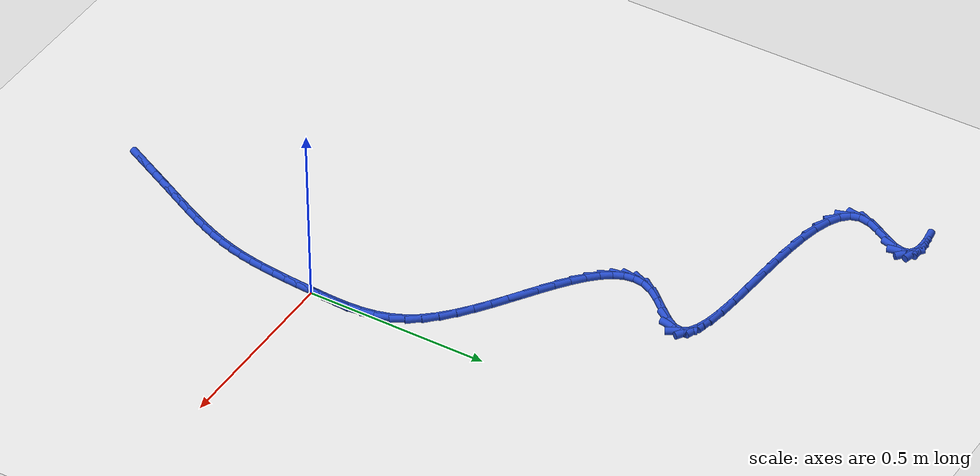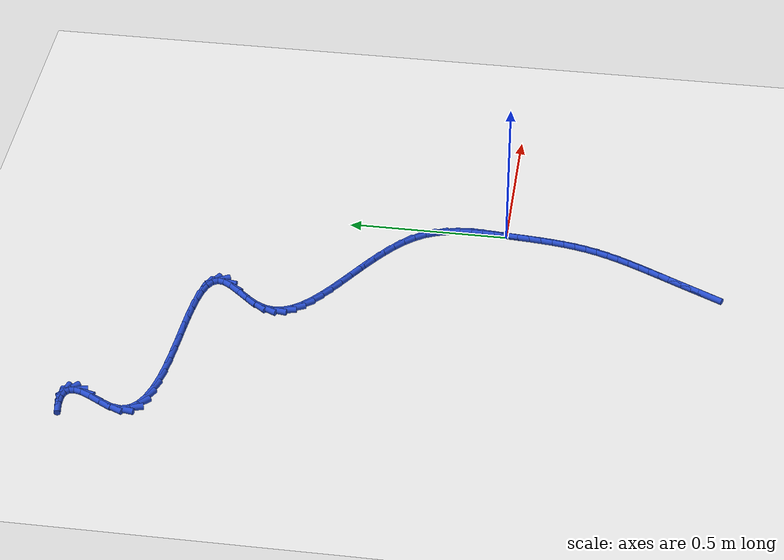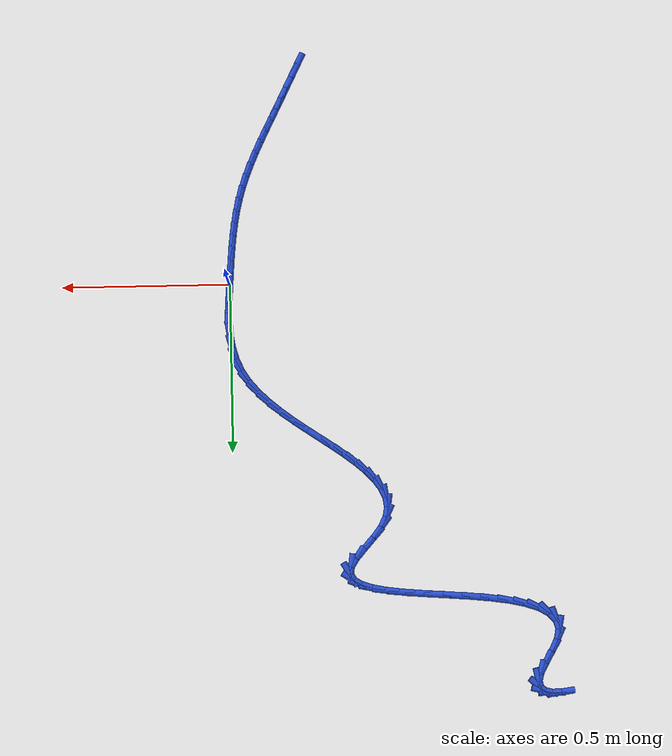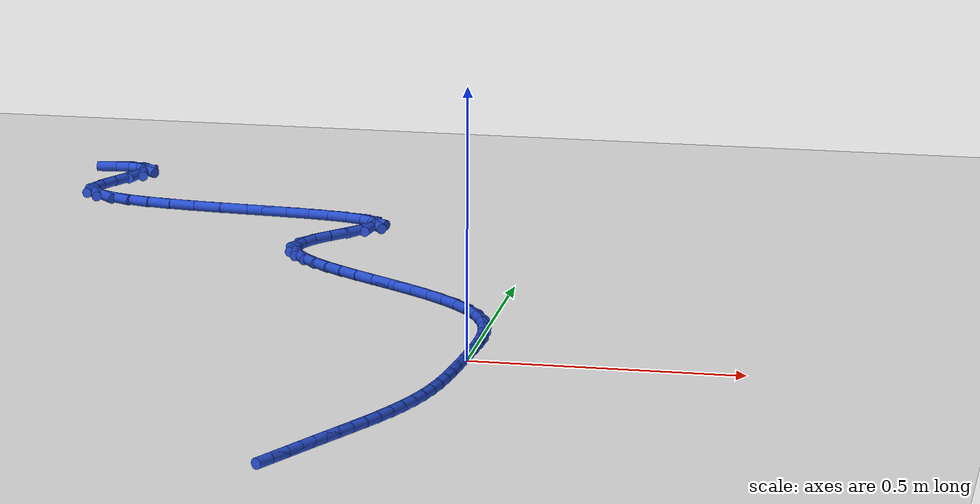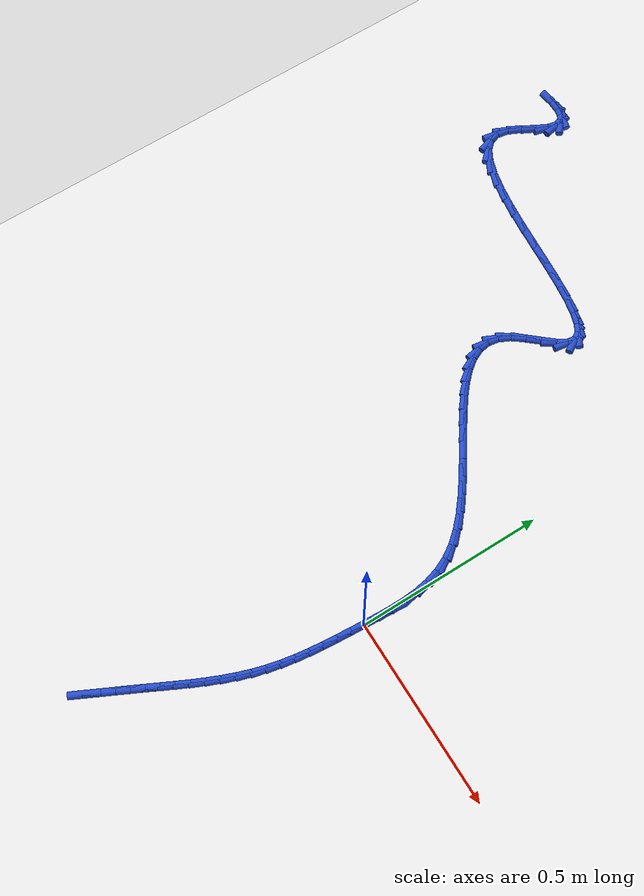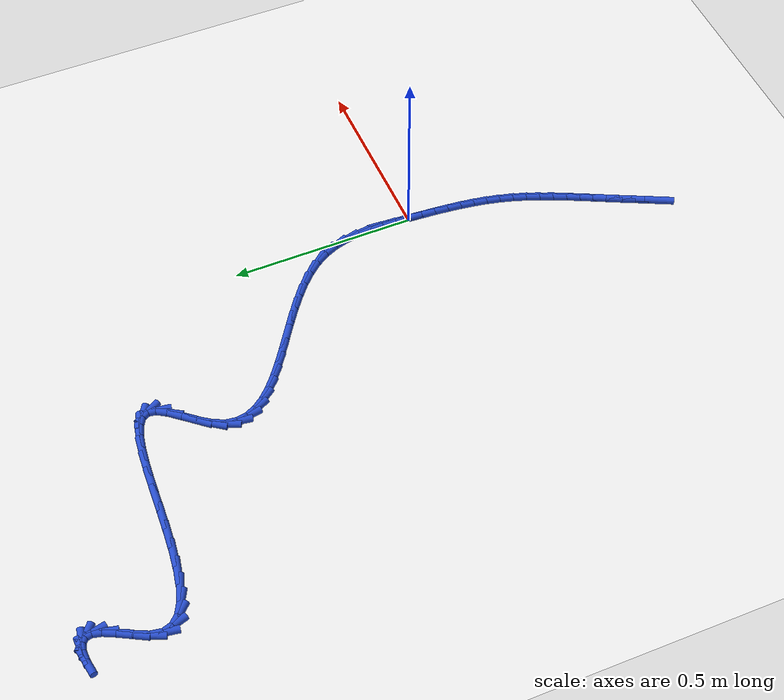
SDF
<sdf version="1.6">
 <world name="default">
  <model name="ground_plane">
   <static>1</static>
   <link name="link">
    <collision name="collision">
     <geometry><plane><normal>0 0 1</normal><size>100 100</size></plane></geometry>
     <surface><friction><ode><mu>100</mu><mu2>50</mu2></ode></friction></surface>
    </collision>
    <visual name="visual">
     <cast_shadows>0</cast_shadows>
     <geometry><plane><normal>0 0 1</normal><size>100 100</size></plane></geometry>
     <material>
      <script><uri>file://media/materials/scripts/gazebo.material</uri><name>Gazebo/WhiteGlow</name></script>
     </material>
    </visual>
   </link>
  </model>
  <model name="line">
   <link name="link_0">
    <pose>8.673617379884035e-19 -5.551115123125783e-17 0.01 0 1.57 1.5075253190274285</pose>
    <collision name="collision">
     <geometry><cylinder><radius>0.01</radius><length>0.08</length></cylinder></geometry>
    </collision>
    <visual name="visual">
     <material>
      <script><name>Gazebo/Blue</name><uri>file://media/materials/scripts/gazebo.material</uri></script>
     </material>
     <geometry><cylinder><radius>0.01</radius><length>0.08</length></cylinder></geometry>
    </visual>
   </link>
   <link name="link_1">
    <pose>0.0024006974243786046 0.03789244310633456 0.01 0 1.57 1.5290202648854714</pose>
    <collision name="collision">
     <geometry><cylinder><radius>0.01</radius><length>0.08</length></cylinder></geometry>
    </collision>
    <visual name="visual">
     <material>
      <script><name>Gazebo/Blue</name><uri>file://media/materials/scripts/gazebo.material</uri></script>
     </material>
     <geometry><cylinder><radius>0.01</radius><length>0.08</length></cylinder></geometry>
    </visual>
   </link>
   <link name="link_2">
    <pose>0.003987087788672461 0.07584401890051412 0.01 0 1.57 -1.5689586023007087</pose>
    <collision name="collision">
     <geometry><cylinder><radius>0.01</radius><length>0.08</length></cylinder></geometry>
    </collision>
    <visual name="visual">
     <material>
      <script><name>Gazebo/Blue</name><uri>file://media/materials/scripts/gazebo.material</uri></script>
     </material>
     <geometry><cylinder><radius>0.01</radius><length>0.08</length></cylinder></geometry>
    </visual>
   </link>
   <link name="link_3">
    <pose>0.003917731223084836 0.11358443523018567 0.01 0 1.57 -1.5020210537201513</pose>
    <collision name="collision">
     <geometry><cylinder><radius>0.01</radius><length>0.08</length></cylinder></geometry>
    </collision>
    <visual name="visual">
     <material>
      <script><name>Gazebo/Blue</name><uri>file://media/materials/scripts/gazebo.material</uri></script>
     </material>
     <geometry><cylinder><radius>0.01</radius><length>0.08</length></cylinder></geometry>
    </visual>
   </link>
   <link name="link_4">
    <pose>0.0013511878578189931 0.150843399942996 0.01 0 1.57 -1.4104318224017498</pose>
    <collision name="collision">
     <geometry><cylinder><radius>0.01</radius><length>0.08</length></cylinder></geometry>
    </collision>
    <visual name="visual">
     <material>
      <script><name>Gazebo/Blue</name><uri>file://media/materials/scripts/gazebo.material</uri></script>
     </material>
     <geometry><cylinder><radius>0.01</radius><length>0.08</length></cylinder></geometry>
    </visual>
   </link>
   <link name="link_5">
    <pose>-0.004553982176921807 0.18735062088659205 0.01 0 1.57 -1.2938881794318415</pose>
    <collision name="collision">
     <geometry><cylinder><radius>0.01</radius><length>0.08</length></cylinder></geometry>
    </collision>
    <visual name="visual">
     <material>
      <script><name>Gazebo/Blue</name><uri>file://media/materials/scripts/gazebo.material</uri></script>
     </material>
     <geometry><cylinder><radius>0.01</radius><length>0.08</length></cylinder></geometry>
    </visual>
   </link>
   <link name="link_6">
    <pose>-0.014639218750934303 0.22283580590862082 0.01 0 1.57 -1.1547741205388387</pose>
    <collision name="collision">
     <geometry><cylinder><radius>0.01</radius><length>0.08</length></cylinder></geometry>
    </collision>
    <visual name="visual">
     <material>
      <script><name>Gazebo/Blue</name><uri>file://media/materials/scripts/gazebo.material</uri></script>
     </material>
     <geometry><cylinder><radius>0.01</radius><length>0.08</length></cylinder></geometry>
    </visual>
   </link>
   <link name="link_7">
    <pose>-0.02974596173401522 0.25702866285672893 0.01 0 1.57 -1.0014317657565566</pose>
    <collision name="collision">
     <geometry><cylinder><radius>0.01</radius><length>0.08</length></cylinder></geometry>
    </collision>
    <visual name="visual">
     <material>
      <script><name>Gazebo/Blue</name><uri>file://media/materials/scripts/gazebo.material</uri></script>
     </material>
     <geometry><cylinder><radius>0.01</radius><length>0.08</length></cylinder></geometry>
    </visual>
   </link>
   <link name="link_8">
    <pose>-0.05064300377911523 0.2896765970687816 0.01 0 1.57 -0.8663912121392355</pose>
    <collision name="collision">
     <geometry><cylinder><radius>0.01</radius><length>0.08</length></cylinder></geometry>
    </collision>
    <visual name="visual">
     <material>
      <script><name>Gazebo/Blue</name><uri>file://media/materials/scripts/gazebo.material</uri></script>
     </material>
     <geometry><cylinder><radius>0.01</radius><length>0.08</length></cylinder></geometry>
    </visual>
   </link>
   <link name="link_9">
    <pose>-0.07707347467329738 0.32077687422587503 0.01 0 1.57 -0.7654138585581325</pose>
    <collision name="collision">
     <geometry><cylinder><radius>0.01</radius><length>0.08</length></cylinder></geometry>
    </collision>
    <visual name="visual">
     <material>
      <script><name>Gazebo/Blue</name><uri>file://media/materials/scripts/gazebo.material</uri></script>
     </material>
     <geometry><cylinder><radius>0.01</radius><length>0.08</length></cylinder></geometry>
    </visual>
   </link>
   <link name="link_10">
    <pose>-0.10802119532142378 0.3505117342186976 0.01 0 1.57 -0.6923956295825017</pose>
    <collision name="collision">
     <geometry><cylinder><radius>0.01</radius><length>0.08</length></cylinder></geometry>
    </collision>
    <visual name="visual">
     <material>
      <script><name>Gazebo/Blue</name><uri>file://media/materials/scripts/gazebo.material</uri></script>
     </material>
     <geometry><cylinder><radius>0.01</radius><length>0.08</length></cylinder></geometry>
    </visual>
   </link>
   <link name="link_11">
    <pose>-0.14245212459521098 0.37906776828366845 0.01 0 1.57 -0.64182833404888</pose>
    <collision name="collision">
     <geometry><cylinder><radius>0.01</radius><length>0.08</length></cylinder></geometry>
    </collision>
    <visual name="visual">
     <material>
      <script><name>Gazebo/Blue</name><uri>file://media/materials/scripts/gazebo.material</uri></script>
     </material>
     <geometry><cylinder><radius>0.01</radius><length>0.08</length></cylinder></geometry>
    </visual>
   </link>
   <link name="link_12">
    <pose>-0.17933222136637558 0.40663156765720654 0.01 0 1.57 -0.6098754694298004</pose>
    <collision name="collision">
     <geometry><cylinder><radius>0.01</radius><length>0.08</length></cylinder></geometry>
    </collision>
    <visual name="visual">
     <material>
      <script><name>Gazebo/Blue</name><uri>file://media/materials/scripts/gazebo.material</uri></script>
     </material>
     <geometry><cylinder><radius>0.01</radius><length>0.08</length></cylinder></geometry>
    </visual>
   </link>
   <link name="link_13">
    <pose>-0.21762744450663402 0.4333897235757309 0.01 0 1.57 -0.5943284206412195</pose>
    <collision name="collision">
     <geometry><cylinder><radius>0.01</radius><length>0.08</length></cylinder></geometry>
    </collision>
    <visual name="visual">
     <material>
      <script><name>Gazebo/Blue</name><uri>file://media/materials/scripts/gazebo.material</uri></script>
     </material>
     <geometry><cylinder><radius>0.01</radius><length>0.08</length></cylinder></geometry>
    </visual>
   </link>
   <link name="link_14">
    <pose>-0.2563037528877031 0.45952882727566086 0.01 0 1.57 -0.594487897480302</pose>
    <collision name="collision">
     <geometry><cylinder><radius>0.01</radius><length>0.08</length></cylinder></geometry>
    </collision>
    <visual name="visual">
     <material>
      <script><name>Gazebo/Blue</name><uri>file://media/materials/scripts/gazebo.material</uri></script>
     </material>
     <geometry><cylinder><radius>0.01</radius><length>0.08</length></cylinder></geometry>
    </visual>
   </link>
   <link name="link_15">
    <pose>-0.29432710538129914 0.485235469993415 0.01 0 1.57 -0.6111935539686418</pose>
    <collision name="collision">
     <geometry><cylinder><radius>0.01</radius><length>0.08</length></cylinder></geometry>
    </collision>
    <visual name="visual">
     <material>
      <script><name>Gazebo/Blue</name><uri>file://media/materials/scripts/gazebo.material</uri></script>
     </material>
     <geometry><cylinder><radius>0.01</radius><length>0.08</length></cylinder></geometry>
    </visual>
   </link>
   <link name="link_16">
    <pose>-0.33066346085913895 0.5106962429654127 0.01 0 1.57 -0.6471088264313417</pose>
    <collision name="collision">
     <geometry><cylinder><radius>0.01</radius><length>0.08</length></cylinder></geometry>
    </collision>
    <visual name="visual">
     <material>
      <script><name>Gazebo/Blue</name><uri>file://media/materials/scripts/gazebo.material</uri></script>
     </material>
     <geometry><cylinder><radius>0.01</radius><length>0.08</length></cylinder></geometry>
    </visual>
   </link>
   <link name="link_17">
    <pose>-0.3642787781929391 0.5360977374280731 0.01 0 1.57 -0.7073568498102262</pose>
    <collision name="collision">
     <geometry><cylinder><radius>0.01</radius><length>0.08</length></cylinder></geometry>
    </collision>
    <visual name="visual">
     <material>
      <script><name>Gazebo/Blue</name><uri>file://media/materials/scripts/gazebo.material</uri></script>
     </material>
     <geometry><cylinder><radius>0.01</radius><length>0.08</length></cylinder></geometry>
    </visual>
   </link>
   <link name="link_18">
    <pose>-0.394139016254416 0.5616265446178148 0.01 0 1.57 -0.8005518936840011</pose>
    <collision name="collision">
     <geometry><cylinder><radius>0.01</radius><length>0.08</length></cylinder></geometry>
    </collision>
    <visual name="visual">
     <material>
      <script><name>Gazebo/Blue</name><uri>file://media/materials/scripts/gazebo.material</uri></script>
     </material>
     <geometry><cylinder><radius>0.01</radius><length>0.08</length></cylinder></geometry>
    </visual>
   </link>
   <link name="link_19">
    <pose>-0.4192101339152863 0.5874692557710572 0.01 0 1.57 -0.9397874312750841</pose>
    <collision name="collision">
     <geometry><cylinder><radius>0.01</radius><length>0.08</length></cylinder></geometry>
    </collision>
    <visual name="visual">
     <material>
      <script><name>Gazebo/Blue</name><uri>file://media/materials/scripts/gazebo.material</uri></script>
     </material>
     <geometry><cylinder><radius>0.01</radius><length>0.08</length></cylinder></geometry>
    </visual>
   </link>
   <link name="link_20">
    <pose>-0.43845809004726666 0.6138124621242195 0.01 0 1.57 -1.1409768995910816</pose>
    <collision name="collision">
     <geometry><cylinder><radius>0.01</radius><length>0.08</length></cylinder></geometry>
    </collision>
    <visual name="visual">
     <material>
      <script><name>Gazebo/Blue</name><uri>file://media/materials/scripts/gazebo.material</uri></script>
     </material>
     <geometry><cylinder><radius>0.01</radius><length>0.08</length></cylinder></geometry>
    </visual>
   </link>
   <link name="link_21">
    <pose>-0.4508488435220736 0.6408427549137203 0.01 0 1.57 -1.4109226978637774</pose>
    <collision name="collision">
     <geometry><cylinder><radius>0.01</radius><length>0.08</length></cylinder></geometry>
    </collision>
    <visual name="visual">
     <material>
      <script><name>Gazebo/Blue</name><uri>file://media/materials/scripts/gazebo.material</uri></script>
     </material>
     <geometry><cylinder><radius>0.01</radius><length>0.08</length></cylinder></geometry>
    </visual>
   </link>
   <link name="link_22">
    <pose>-0.45534835321142353 0.6687467253759789 0.01 0 1.57 1.4191677931692994</pose>
    <collision name="collision">
     <geometry><cylinder><radius>0.01</radius><length>0.08</length></cylinder></geometry>
    </collision>
    <visual name="visual">
     <material>
      <script><name>Gazebo/Blue</name><uri>file://media/materials/scripts/gazebo.material</uri></script>
     </material>
     <geometry><cylinder><radius>0.01</radius><length>0.08</length></cylinder></geometry>
    </visual>
   </link>
   <link name="link_23">
    <pose>-0.4509225779870332 0.6977109647474142 0.01 0 1.57 1.1265887744590974</pose>
    <collision name="collision">
     <geometry><cylinder><radius>0.01</radius><length>0.08</length></cylinder></geometry>
    </collision>
    <visual name="visual">
     <material>
      <script><name>Gazebo/Blue</name><uri>file://media/materials/scripts/gazebo.material</uri></script>
     </material>
     <geometry><cylinder><radius>0.01</radius><length>0.08</length></cylinder></geometry>
    </visual>
   </link>
   <link name="link_24">
    <pose>-0.4365450232952983 0.7279203001907419 0.01 0 1.57 0.9265132472743725</pose>
    <collision name="collision">
     <geometry><cylinder><radius>0.01</radius><length>0.08</length></cylinder></geometry>
    </collision>
    <visual name="visual">
     <material>
      <script><name>Gazebo/Blue</name><uri>file://media/materials/scripts/gazebo.material</uri></script>
     </material>
     <geometry><cylinder><radius>0.01</radius><length>0.08</length></cylinder></geometry>
    </visual>
   </link>
   <link name="link_25">
    <pose>-0.4131150955645314 0.7591093637241842 0.01 0 1.57 0.8499098955715528</pose>
    <collision name="collision">
     <geometry><cylinder><radius>0.01</radius><length>0.08</length></cylinder></geometry>
    </collision>
    <visual name="visual">
     <material>
      <script><name>Gazebo/Blue</name><uri>file://media/materials/scripts/gazebo.material</uri></script>
     </material>
     <geometry><cylinder><radius>0.01</radius><length>0.08</length></cylinder></geometry>
    </visual>
   </link>
   <link name="link_26">
    <pose>-0.38600149579867293 0.789968053116307 0.01 0 1.57 0.8645799931508453</pose>
    <collision name="collision">
     <geometry><cylinder><radius>0.01</radius><length>0.08</length></cylinder></geometry>
    </collision>
    <visual name="visual">
     <material>
      <script><name>Gazebo/Blue</name><uri>file://media/materials/scripts/gazebo.material</uri></script>
     </material>
     <geometry><cylinder><radius>0.01</radius><length>0.08</length></cylinder></geometry>
    </visual>
   </link>
   <link name="link_27">
    <pose>-0.36120529643232446 0.8190384441291078 0.01 0 1.57 1.0028507828849151</pose>
    <collision name="collision">
     <geometry><cylinder><radius>0.01</radius><length>0.08</length></cylinder></geometry>
    </collision>
    <visual name="visual">
     <material>
      <script><name>Gazebo/Blue</name><uri>file://media/materials/scripts/gazebo.material</uri></script>
     </material>
     <geometry><cylinder><radius>0.01</radius><length>0.08</length></cylinder></geometry>
    </visual>
   </link>
   <link name="link_28">
    <pose>-0.34472756990008724 0.8448626125245833 0.01 0 1.57 1.4241262407742952</pose>
    <collision name="collision">
     <geometry><cylinder><radius>0.01</radius><length>0.08</length></cylinder></geometry>
    </collision>
    <visual name="visual">
     <material>
      <script><name>Gazebo/Blue</name><uri>file://media/materials/scripts/gazebo.material</uri></script>
     </material>
     <geometry><cylinder><radius>0.01</radius><length>0.08</length></cylinder></geometry>
    </visual>
   </link>
   <link name="link_29">
    <pose>-0.34156777465274174 0.8662514642827709 0.01 0 1.57 -1.0385326744617382</pose>
    <collision name="collision">
     <geometry><cylinder><radius>0.01</radius><length>0.08</length></cylinder></geometry>
    </collision>
    <visual name="visual">
     <material>
      <script><name>Gazebo/Blue</name><uri>file://media/materials/scripts/gazebo.material</uri></script>
     </material>
     <geometry><cylinder><radius>0.01</radius><length>0.08</length></cylinder></geometry>
    </visual>
   </link>
   <link name="link_30">
    <pose>-0.3516540762188279 0.8833770253401521 0.01 0 1.57 -0.5561707207859877</pose>
    <collision name="collision">
     <geometry><cylinder><radius>0.01</radius><length>0.08</length></cylinder></geometry>
    </collision>
    <visual name="visual">
     <material>
      <script><name>Gazebo/Blue</name><uri>file://media/materials/scripts/gazebo.material</uri></script>
     </material>
     <geometry><cylinder><radius>0.01</radius><length>0.08</length></cylinder></geometry>
    </visual>
   </link>
   <link name="link_31">
    <pose>-0.3733134287240263 0.8968410820174597 0.01 0 1.57 -0.31846515100283507</pose>
    <collision name="collision">
     <geometry><cylinder><radius>0.01</radius><length>0.08</length></cylinder></geometry>
    </collision>
    <visual name="visual">
     <material>
      <script><name>Gazebo/Blue</name><uri>file://media/materials/scripts/gazebo.material</uri></script>
     </material>
     <geometry><cylinder><radius>0.01</radius><length>0.08</length></cylinder></geometry>
    </visual>
   </link>
   <link name="link_32">
    <pose>-0.4048721725801135 0.9072455853544157 0.01 0 1.57 -0.197154004233897</pose>
    <collision name="collision">
     <geometry><cylinder><radius>0.01</radius><length>0.08</length></cylinder></geometry>
    </collision>
    <visual name="visual">
     <material>
      <script><name>Gazebo/Blue</name><uri>file://media/materials/scripts/gazebo.material</uri></script>
     </material>
     <geometry><cylinder><radius>0.01</radius><length>0.08</length></cylinder></geometry>
    </visual>
   </link>
   <link name="link_33">
    <pose>-0.444656648198866 0.9151924863907421 0.01 0 1.57 -0.13070722965840106</pose>
    <collision name="collision">
     <geometry><cylinder><radius>0.01</radius><length>0.08</length></cylinder></geometry>
    </collision>
    <visual name="visual">
     <material>
      <script><name>Gazebo/Blue</name><uri>file://media/materials/scripts/gazebo.material</uri></script>
     </material>
     <geometry><cylinder><radius>0.01</radius><length>0.08</length></cylinder></geometry>
    </visual>
   </link>
   <link name="link_34">
    <pose>-0.49099319599206065 0.9212837361661609 0.01 0 1.57 -0.09417637619817003</pose>
    <collision name="collision">
     <geometry><cylinder><radius>0.01</radius><length>0.08</length></cylinder></geometry>
    </collision>
    <visual name="visual">
     <material>
      <script><name>Gazebo/Blue</name><uri>file://media/materials/scripts/gazebo.material</uri></script>
     </material>
     <geometry><cylinder><radius>0.01</radius><length>0.08</length></cylinder></geometry>
    </visual>
   </link>
   <link name="link_35">
    <pose>-0.5422081563714738 0.9261212857203935 0.01 0 1.57 -0.07676583691806407</pose>
    <collision name="collision">
     <geometry><cylinder><radius>0.01</radius><length>0.08</length></cylinder></geometry>
    </collision>
    <visual name="visual">
     <material>
      <script><name>Gazebo/Blue</name><uri>file://media/materials/scripts/gazebo.material</uri></script>
     </material>
     <geometry><cylinder><radius>0.01</radius><length>0.08</length></cylinder></geometry>
    </visual>
   </link>
   <link name="link_36">
    <pose>-0.5966278697488823 0.9303070860931625 0.01 0 1.57 -0.07378791071253317</pose>
    <collision name="collision">
     <geometry><cylinder><radius>0.01</radius><length>0.08</length></cylinder></geometry>
    </collision>
    <visual name="visual">
     <material>
      <script><name>Gazebo/Blue</name><uri>file://media/materials/scripts/gazebo.material</uri></script>
     </material>
     <geometry><cylinder><radius>0.01</radius><length>0.08</length></cylinder></geometry>
    </visual>
   </link>
   <link name="link_37">
    <pose>-0.6525786765360627 0.9344430883241895 0.01 0 1.57 -0.08380794231501582</pose>
    <collision name="collision">
     <geometry><cylinder><radius>0.01</radius><length>0.08</length></cylinder></geometry>
    </collision>
    <visual name="visual">
     <material>
      <script><name>Gazebo/Blue</name><uri>file://media/materials/scripts/gazebo.material</uri></script>
     </material>
     <geometry><cylinder><radius>0.01</radius><length>0.08</length></cylinder></geometry>
    </visual>
   </link>
   <link name="link_38">
    <pose>-0.7083869171447914 0.9391312434531967 0.01 0 1.57 -0.10778661451439918</pose>
    <collision name="collision">
     <geometry><cylinder><radius>0.01</radius><length>0.08</length></cylinder></geometry>
    </collision>
    <visual name="visual">
     <material>
      <script><name>Gazebo/Blue</name><uri>file://media/materials/scripts/gazebo.material</uri></script>
     </material>
     <geometry><cylinder><radius>0.01</radius><length>0.08</length></cylinder></geometry>
    </visual>
   </link>
   <link name="link_39">
    <pose>-0.7623789319868453 0.9449735025199053 0.01 0 1.57 -0.14933521840631078</pose>
    <collision name="collision">
     <geometry><cylinder><radius>0.01</radius><length>0.08</length></cylinder></geometry>
    </collision>
    <visual name="visual">
     <material>
      <script><name>Gazebo/Blue</name><uri>file://media/materials/scripts/gazebo.material</uri></script>
     </material>
     <geometry><cylinder><radius>0.01</radius><length>0.08</length></cylinder></geometry>
    </visual>
   </link>
   <link name="link_40">
    <pose>-0.8128810614740011 0.9525718165640382 0.01 0 1.57 -0.21616804262895564</pose>
    <collision name="collision">
     <geometry><cylinder><radius>0.01</radius><length>0.08</length></cylinder></geometry>
    </collision>
    <visual name="visual">
     <material>
      <script><name>Gazebo/Blue</name><uri>file://media/materials/scripts/gazebo.material</uri></script>
     </material>
     <geometry><cylinder><radius>0.01</radius><length>0.08</length></cylinder></geometry>
    </visual>
   </link>
   <link name="link_41">
    <pose>-0.8582196460180352 0.9625281366253167 0.01 0 1.57 -0.32367743674897254</pose>
    <collision name="collision">
     <geometry><cylinder><radius>0.01</radius><length>0.08</length></cylinder></geometry>
    </collision>
    <visual name="visual">
     <material>
      <script><name>Gazebo/Blue</name><uri>file://media/materials/scripts/gazebo.material</uri></script>
     </material>
     <geometry><cylinder><radius>0.01</radius><length>0.08</length></cylinder></geometry>
    </visual>
   </link>
   <link name="link_42">
    <pose>-0.8967210260307243 0.9754444137434628 0.01 0 1.57 -0.502418190944188</pose>
    <collision name="collision">
     <geometry><cylinder><radius>0.01</radius><length>0.08</length></cylinder></geometry>
    </collision>
    <visual name="visual">
     <material>
      <script><name>Gazebo/Blue</name><uri>file://media/materials/scripts/gazebo.material</uri></script>
     </material>
     <geometry><cylinder><radius>0.01</radius><length>0.08</length></cylinder></geometry>
    </visual>
   </link>
   <link name="link_43">
    <pose>-0.9267115419238452 0.9919225989581986 0.01 0 1.57 -0.806065004185008</pose>
    <collision name="collision">
     <geometry><cylinder><radius>0.01</radius><length>0.08</length></cylinder></geometry>
    </collision>
    <visual name="visual">
     <material>
      <script><name>Gazebo/Blue</name><uri>file://media/materials/scripts/gazebo.material</uri></script>
     </material>
     <geometry><cylinder><radius>0.01</radius><length>0.08</length></cylinder></geometry>
    </visual>
   </link>
   <link name="link_44">
    <pose>-0.9465175341091742 1.012564643309246 0.01 0 1.57 -1.2676298551796483</pose>
    <collision name="collision">
     <geometry><cylinder><radius>0.01</radius><length>0.08</length></cylinder></geometry>
    </collision>
    <visual name="visual">
     <material>
      <script><name>Gazebo/Blue</name><uri>file://media/materials/scripts/gazebo.material</uri></script>
     </material>
     <geometry><cylinder><radius>0.01</radius><length>0.08</length></cylinder></geometry>
    </visual>
   </link>
   <link name="link_45">
    <pose>-0.954465342998488 1.0379724978363267 0.01 0 1.57 1.39590290702077</pose>
    <collision name="collision">
     <geometry><cylinder><radius>0.01</radius><length>0.08</length></cylinder></geometry>
    </collision>
    <visual name="visual">
     <material>
      <script><name>Gazebo/Blue</name><uri>file://media/materials/scripts/gazebo.material</uri></script>
     </material>
     <geometry><cylinder><radius>0.01</radius><length>0.08</length></cylinder></geometry>
    </visual>
   </link>
   <link name="link_46">
    <pose>-0.9490411559229682 1.068669876234632 0.01 0 1.57 1.1337649181963538</pose>
    <collision name="collision">
     <geometry><cylinder><radius>0.01</radius><length>0.08</length></cylinder></geometry>
    </collision>
    <visual name="visual">
     <material>
      <script><name>Gazebo/Blue</name><uri>file://media/materials/scripts/gazebo.material</uri></script>
     </material>
     <geometry><cylinder><radius>0.01</radius><length>0.08</length></cylinder></geometry>
    </visual>
   </link>
   <link name="link_47">
    <pose>-0.9329493993433 1.1031158679368374 0.01 0 1.57 1.0552168070613144</pose>
    <collision name="collision">
     <geometry><cylinder><radius>0.01</radius><length>0.08</length></cylinder></geometry>
    </collision>
    <visual name="visual">
     <material>
      <script><name>Gazebo/Blue</name><uri>file://media/materials/scripts/gazebo.material</uri></script>
     </material>
     <geometry><cylinder><radius>0.01</radius><length>0.08</length></cylinder></geometry>
    </visual>
   </link>
   <link name="link_48">
    <pose>-0.9134376560663752 1.137545906832915 0.01 0 1.57 1.102155173140251</pose>
    <collision name="collision">
     <geometry><cylinder><radius>0.01</radius><length>0.08</length></cylinder></geometry>
    </collision>
    <visual name="visual">
     <material>
      <script><name>Gazebo/Blue</name><uri>file://media/materials/scripts/gazebo.material</uri></script>
     </material>
     <geometry><cylinder><radius>0.01</radius><length>0.08</length></cylinder></geometry>
    </visual>
   </link>
   <link name="link_49">
    <pose>-0.8979762566902787 1.168086483750758 0.01 0 1.57 1.3291386056906196</pose>
    <collision name="collision">
     <geometry><cylinder><radius>0.01</radius><length>0.08</length></cylinder></geometry>
    </collision>
    <visual name="visual">
     <material>
      <script><name>Gazebo/Blue</name><uri>file://media/materials/scripts/gazebo.material</uri></script>
     </material>
     <geometry><cylinder><radius>0.01</radius><length>0.08</length></cylinder></geometry>
    </visual>
   </link>
   <link name="link_50">
    <pose>-0.8921126494063587 1.1918764066381438 0.01 0 1.57 -1.3493950889043413</pose>
    <collision name="collision">
     <geometry><cylinder><radius>0.01</radius><length>0.08</length></cylinder></geometry>
    </collision>
    <visual name="visual">
     <material>
      <script><name>Gazebo/Blue</name><uri>file://media/materials/scripts/gazebo.material</uri></script>
     </material>
     <geometry><cylinder><radius>0.01</radius><length>0.08</length></cylinder></geometry>
    </visual>
   </link>
   <link name="link_51">
    <pose>-0.8959492516949755 1.2089210642528503 0.01 0 1.57 -0.7058133783352732</pose>
    <collision name="collision">
     <geometry><cylinder><radius>0.01</radius><length>0.08</length></cylinder></geometry>
    </collision>
    <visual name="visual">
     <material>
      <script><name>Gazebo/Blue</name><uri>file://media/materials/scripts/gazebo.material</uri></script>
     </material>
     <geometry><cylinder><radius>0.01</radius><length>0.08</length></cylinder></geometry>
    </visual>
   </link>
   <link name="link_52">
    <pose>-0.9086313748793773 1.2197297216921528 0.01 0 1.57 -0.2410450929915201</pose>
    <collision name="collision">
     <geometry><cylinder><radius>0.01</radius><length>0.08</length></cylinder></geometry>
    </collision>
    <visual name="visual">
     <material>
      <script><name>Gazebo/Blue</name><uri>file://media/materials/scripts/gazebo.material</uri></script>
     </material>
     <geometry><cylinder><radius>0.01</radius><length>0.08</length></cylinder></geometry>
    </visual>
   </link>
   <link name="link_53">
    <pose>-0.9293043302828121 1.2248116440533283 0.01 0 1.57 0.004874179724751504</pose>
    <collision name="collision">
     <geometry><cylinder><radius>0.01</radius><length>0.08</length></cylinder></geometry>
    </collision>
    <visual name="visual">
     <material>
      <script><name>Gazebo/Blue</name><uri>file://media/materials/scripts/gazebo.material</uri></script>
     </material>
     <geometry><cylinder><radius>0.01</radius><length>0.08</length></cylinder></geometry>
    </visual>
   </link>
   <link name="link_54">
    <pose>-0.9571134292285278 1.2246760964336518 0.01 0 1.57 0.14114016267156324</pose>
    <collision name="collision">
     <geometry><cylinder><radius>0.01</radius><length>0.08</length></cylinder></geometry>
    </collision>
    <visual name="visual">
     <material>
      <script><name>Gazebo/Blue</name><uri>file://media/materials/scripts/gazebo.material</uri></script>
     </material>
     <geometry><cylinder><radius>0.01</radius><length>0.08</length></cylinder></geometry>
    </visual>
   </link>
   <link name="link_211">
    <pose>-0.21206892920266732 -0.653513529334716 0.01 0 1.57 1.109735680937742</pose>
    <collision name="collision">
     <geometry><cylinder><radius>0.01</radius><length>0.08</length></cylinder></geometry>
    </collision>
    <visual name="visual">
     <material>
      <script><name>Gazebo/Blue</name><uri>file://media/materials/scripts/gazebo.material</uri></script>
     </material>
     <geometry><cylinder><radius>0.01</radius><length>0.08</length></cylinder></geometry>
    </visual>
   </link>
   <link name="link_212">
    <pose>-0.19642067385905324 -0.6220135582050963 0.01 0 1.57 1.1114858115647885</pose>
    <collision name="collision">
     <geometry><cylinder><radius>0.01</radius><length>0.08</length></cylinder></geometry>
    </collision>
    <visual name="visual">
     <material>
      <script><name>Gazebo/Blue</name><uri>file://media/materials/scripts/gazebo.material</uri></script>
     </material>
     <geometry><cylinder><radius>0.01</radius><length>0.08</length></cylinder></geometry>
    </visual>
   </link>
   <link name="link_213">
    <pose>-0.1808459887329744 -0.5905234861562072 0.01 0 1.57 1.1110954010387741</pose>
    <collision name="collision">
     <geometry><cylinder><radius>0.01</radius><length>0.08</length></cylinder></geometry>
    </collision>
    <visual name="visual">
     <material>
      <script><name>Gazebo/Blue</name><uri>file://media/materials/scripts/gazebo.material</uri></script>
     </material>
     <geometry><cylinder><radius>0.01</radius><length>0.08</length></cylinder></geometry>
    </visual>
   </link>
   <link name="link_214">
    <pose>-0.16518646249191643 -0.5588929575121985 0.01 0 1.57 1.1086006306147538</pose>
    <collision name="collision">
     <geometry><cylinder><radius>0.01</radius><length>0.08</length></cylinder></geometry>
    </collision>
    <visual name="visual">
     <material>
      <script><name>Gazebo/Blue</name><uri>file://media/materials/scripts/gazebo.material</uri></script>
     </material>
     <geometry><cylinder><radius>0.01</radius><length>0.08</length></cylinder></geometry>
    </visual>
   </link>
   <link name="link_215">
    <pose>-0.14928368380336485 -0.5269716165972196 0.01 0 1.57 1.104888077590612</pose>
    <collision name="collision">
     <geometry><cylinder><radius>0.01</radius><length>0.08</length></cylinder></geometry>
    </collision>
    <visual name="visual">
     <material>
      <script><name>Gazebo/Blue</name><uri>file://media/materials/scripts/gazebo.material</uri></script>
     </material>
     <geometry><cylinder><radius>0.01</radius><length>0.08</length></cylinder></geometry>
    </visual>
   </link>
   <link name="link_216">
    <pose>-0.13301729319026107 -0.4946218704129902 0.01 0 1.57 1.1063010237828157</pose>
    <collision name="collision">
     <geometry><cylinder><radius>0.01</radius><length>0.08</length></cylinder></geometry>
    </collision>
    <visual name="visual">
     <material>
      <script><name>Gazebo/Blue</name><uri>file://media/materials/scripts/gazebo.material</uri></script>
     </material>
     <geometry><cylinder><radius>0.01</radius><length>0.08</length></cylinder></geometry>
    </visual>
   </link>
   <link name="link_217">
    <pose>-0.11657656391413458 -0.46180997747543207 0.01 0 1.57 1.1156893896331141</pose>
    <collision name="collision">
     <geometry><cylinder><radius>0.01</radius><length>0.08</length></cylinder></geometry>
    </collision>
    <visual name="visual">
     <material>
      <script><name>Gazebo/Blue</name><uri>file://media/materials/scripts/gazebo.material</uri></script>
     </material>
     <geometry><cylinder><radius>0.01</radius><length>0.08</length></cylinder></geometry>
    </visual>
   </link>
   <link name="link_218">
    <pose>-0.10030149843012993 -0.4285527512096894 0.01 0 1.57 1.1329866803774442</pose>
    <collision name="collision">
     <geometry><cylinder><radius>0.01</radius><length>0.08</length></cylinder></geometry>
    </collision>
    <visual name="visual">
     <material>
      <script><name>Gazebo/Blue</name><uri>file://media/materials/scripts/gazebo.material</uri></script>
     </material>
     <geometry><cylinder><radius>0.01</radius><length>0.08</length></cylinder></geometry>
    </visual>
   </link>
   <link name="link_219">
    <pose>-0.08453310735889089 -0.39486734318187294 0.01 0 1.57 1.1582993773809511</pose>
    <collision name="collision">
     <geometry><cylinder><radius>0.01</radius><length>0.08</length></cylinder></geometry>
    </collision>
    <visual name="visual">
     <material>
      <script><name>Gazebo/Blue</name><uri>file://media/materials/scripts/gazebo.material</uri></script>
     </material>
     <geometry><cylinder><radius>0.01</radius><length>0.08</length></cylinder></geometry>
    </visual>
   </link>
   <link name="link_220">
    <pose>-0.06961240132106239 -0.3607709049580959 0.01 0 1.57 1.1918935339226677</pose>
    <collision name="collision">
     <geometry><cylinder><radius>0.01</radius><length>0.08</length></cylinder></geometry>
    </collision>
    <visual name="visual">
     <material>
      <script><name>Gazebo/Blue</name><uri>file://media/materials/scripts/gazebo.material</uri></script>
     </material>
     <geometry><cylinder><radius>0.01</radius><length>0.08</length></cylinder></geometry>
    </visual>
   </link>
   <link name="link_221">
    <pose>-0.05588039093728816 -0.32628058810446897 0.01 0 1.57 1.2341511784808314</pose>
    <collision name="collision">
     <geometry><cylinder><radius>0.01</radius><length>0.08</length></cylinder></geometry>
    </collision>
    <visual name="visual">
     <material>
      <script><name>Gazebo/Blue</name><uri>file://media/materials/scripts/gazebo.material</uri></script>
     </material>
     <geometry><cylinder><radius>0.01</radius><length>0.08</length></cylinder></geometry>
    </visual>
   </link>
   <link name="link_222">
    <pose>-0.043678086828212406 -0.29141354418710375 0.01 0 1.57 1.2853526682326253</pose>
    <collision name="collision">
     <geometry><cylinder><radius>0.01</radius><length>0.08</length></cylinder></geometry>
    </collision>
    <visual name="visual">
     <material>
      <script><name>Gazebo/Blue</name><uri>file://media/materials/scripts/gazebo.material</uri></script>
     </material>
     <geometry><cylinder><radius>0.01</radius><length>0.08</length></cylinder></geometry>
    </visual>
   </link>
   <link name="link_223">
    <pose>-0.03334053397491496 -0.2561867867043298 0.01 0 1.57 1.339154689985346</pose>
    <collision name="collision">
     <geometry><cylinder><radius>0.01</radius><length>0.08</length></cylinder></geometry>
    </collision>
    <visual name="visual">
     <material>
      <script><name>Gazebo/Blue</name><uri>file://media/materials/scripts/gazebo.material</uri></script>
     </material>
     <geometry><cylinder><radius>0.01</radius><length>0.08</length></cylinder></geometry>
    </visual>
   </link>
   <link name="link_224">
    <pose>-0.02494918007354667 -0.22061145994061002 0.01 0 1.57 1.3862247707953705</pose>
    <collision name="collision">
     <geometry><cylinder><radius>0.01</radius><length>0.08</length></cylinder></geometry>
    </collision>
    <visual name="visual">
     <material>
      <script><name>Gazebo/Blue</name><uri>file://media/materials/scripts/gazebo.material</uri></script>
     </material>
     <geometry><cylinder><radius>0.01</radius><length>0.08</length></cylinder></geometry>
    </visual>
   </link>
   <link name="link_225">
    <pose>-0.018242917472704734 -0.1846907801357606 0.01 0 1.57 1.4254942492395684</pose>
    <collision name="collision">
     <geometry><cylinder><radius>0.01</radius><length>0.08</length></cylinder></geometry>
    </collision>
    <visual name="visual">
     <material>
      <script><name>Gazebo/Blue</name><uri>file://media/materials/scripts/gazebo.material</uri></script>
     </material>
     <geometry><cylinder><radius>0.01</radius><length>0.08</length></cylinder></geometry>
    </visual>
   </link>
   <link name="link_226">
    <pose>-0.012936375487349433 -0.14842740198993662 0.01 0 1.57 1.456763131936116</pose>
    <collision name="collision">
     <geometry><cylinder><radius>0.01</radius><length>0.08</length></cylinder></geometry>
    </collision>
    <visual name="visual">
     <material>
      <script><name>Gazebo/Blue</name><uri>file://media/materials/scripts/gazebo.material</uri></script>
     </material>
     <geometry><cylinder><radius>0.01</radius><length>0.08</length></cylinder></geometry>
    </visual>
   </link>
   <link name="link_227">
    <pose>-0.008744183432441039 -0.11182398020329339 0.01 0 1.57 1.4800033457148556</pose>
    <collision name="collision">
     <geometry><cylinder><radius>0.01</radius><length>0.08</length></cylinder></geometry>
    </collision>
    <visual name="visual">
     <material>
      <script><name>Gazebo/Blue</name><uri>file://media/materials/scripts/gazebo.material</uri></script>
     </material>
     <geometry><cylinder><radius>0.01</radius><length>0.08</length></cylinder></geometry>
    </visual>
   </link>
   <link name="link_228">
    <pose>-0.00538097062293975 -0.07488316947598526 0.01 0 1.57 1.4952979013496603</pose>
    <collision name="collision">
     <geometry><cylinder><radius>0.01</radius><length>0.08</length></cylinder></geometry>
    </collision>
    <visual name="visual">
     <material>
      <script><name>Gazebo/Blue</name><uri>file://media/materials/scripts/gazebo.material</uri></script>
     </material>
     <geometry><cylinder><radius>0.01</radius><length>0.08</length></cylinder></geometry>
    </visual>
   </link>
   <link name="link_229">
    <pose>-0.0025613663738060137 -0.03760762450816941 0.01 0 1.57 1.5027937085460519</pose>
    <collision name="collision">
     <geometry><cylinder><radius>0.01</radius><length>0.08</length></cylinder></geometry>
    </collision>
    <visual name="visual">
     <material>
      <script><name>Gazebo/Blue</name><uri>file://media/materials/scripts/gazebo.material</uri></script>
     </material>
     <geometry><cylinder><radius>0.01</radius><length>0.08</length></cylinder></geometry>
    </visual>
   </link>
   <link name="link_230">
    <pose>-8.673617379884035e-18 -2.0122792321330962e-16 0.01 0 1.57 1.5026704849689134</pose>
    <collision name="collision">
     <geometry><cylinder><radius>0.01</radius><length>0.08</length></cylinder></geometry>
    </collision>
    <visual name="visual">
     <material>
      <script><name>Gazebo/Blue</name><uri>file://media/materials/scripts/gazebo.material</uri></script>
     </material>
     <geometry><cylinder><radius>0.01</radius><length>0.08</length></cylinder></geometry>
    </visual>
   </link>
   <link name="link_231">
    <pose>0.0025884991835179887 0.03793704934836714 0.01 0 1.57 1.4951252764225909</pose>
    <collision name="collision">
     <geometry><cylinder><radius>0.01</radius><length>0.08</length></cylinder></geometry>
    </collision>
    <visual name="visual">
     <material>
      <script><name>Gazebo/Blue</name><uri>file://media/materials/scripts/gazebo.material</uri></script>
     </material>
     <geometry><cylinder><radius>0.01</radius><length>0.08</length></cylinder></geometry>
    </visual>
   </link>
   <link name="link_232">
    <pose>0.005489501861787703 0.07620086883677732 0.01 0 1.57 1.4988806776070471</pose>
    <collision name="collision">
     <geometry><cylinder><radius>0.01</radius><length>0.08</length></cylinder></geometry>
    </collision>
    <visual name="visual">
     <material>
      <script><name>Gazebo/Blue</name><uri>file://media/materials/scripts/gazebo.material</uri></script>
     </material>
     <geometry><cylinder><radius>0.01</radius><length>0.08</length></cylinder></geometry>
    </visual>
   </link>
  </model>
 </world>
</sdf>
